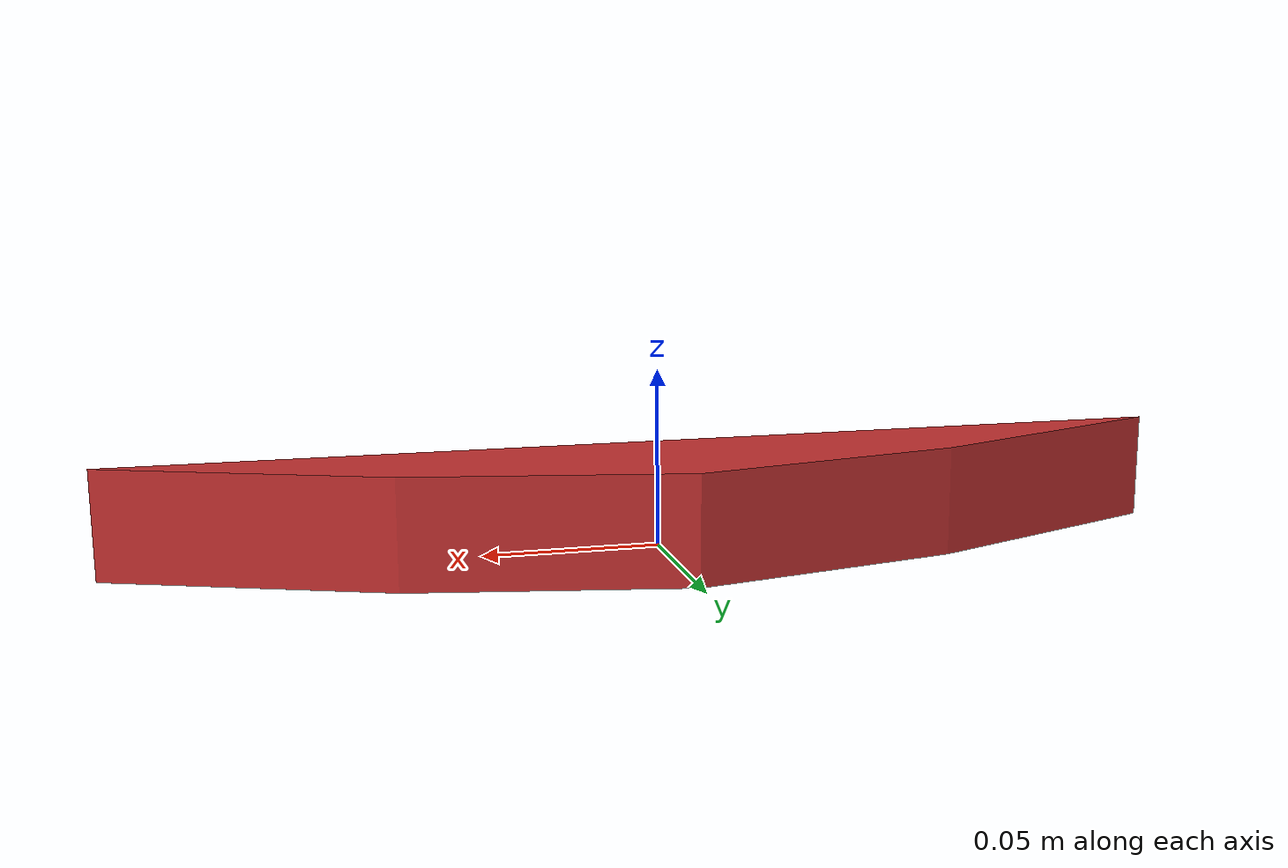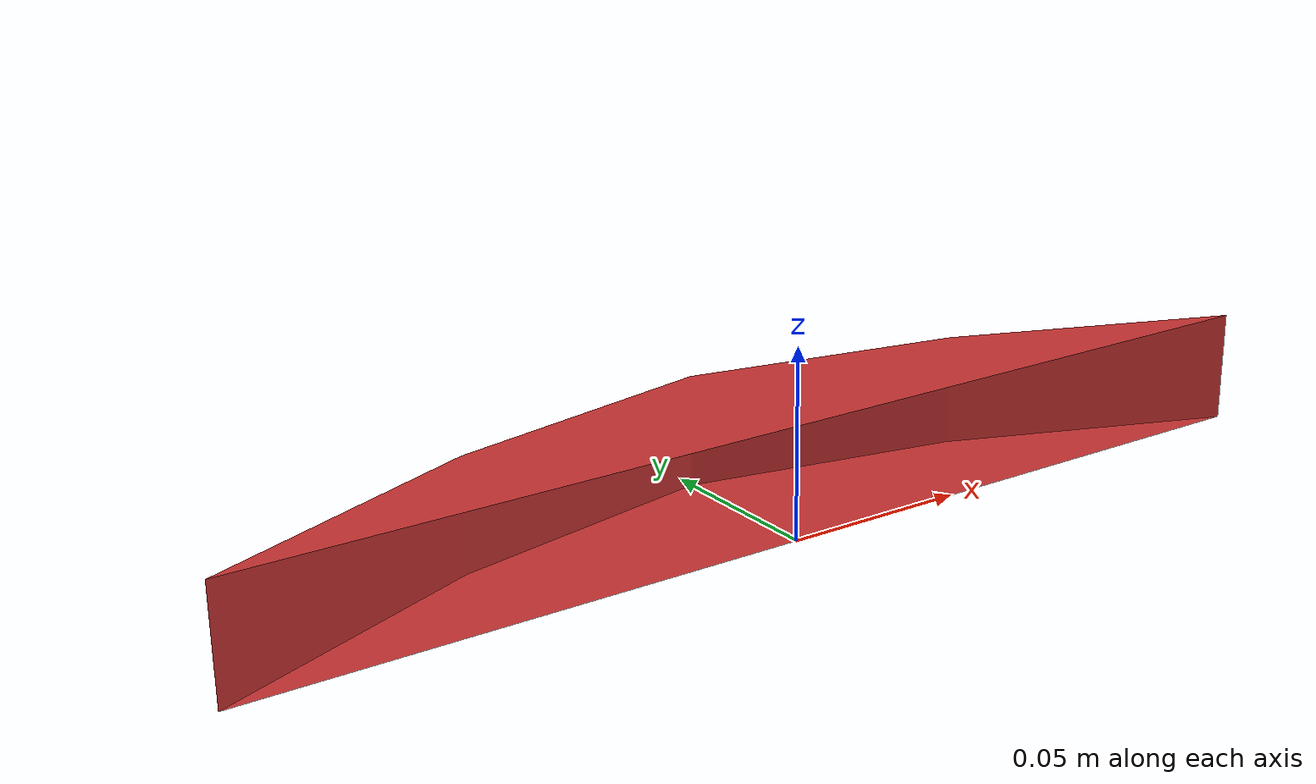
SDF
<?xml version="1.0"?>
<sdf version="1.7">
  <model name="banana_variant">
    <link name="banana_variant_link">
      <inertial>
        <mass>2.5</mass>
        <inertia>
          <ixx>0.035</ixx>
          <iyy>0.218</iyy>
          <izz>0.218</izz>
          <ixy>0.0</ixy>
          <ixz>0.0</ixz>
          <iyz>0.0</iyz>
        </inertia>
      </inertial>
      <visual name="banana_variant_visual">
        <geometry>
          <mesh>
            <uri>banana.obj</uri>
            <scale>0.15 0.15 0.15</scale>
          </mesh>
        </geometry>
        <material>
          <diffuse>0.8 0.2 0.2 1</diffuse>
          <ambient>0.3 0.1 0.1 1</ambient>
        </material>
      </visual>
    </link>
  </model>
</sdf>
